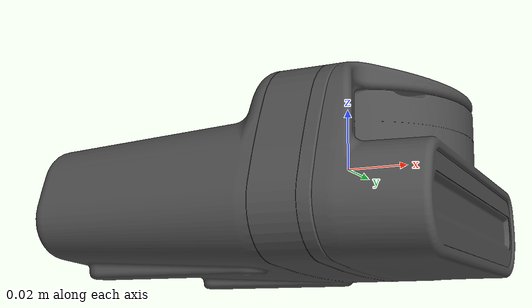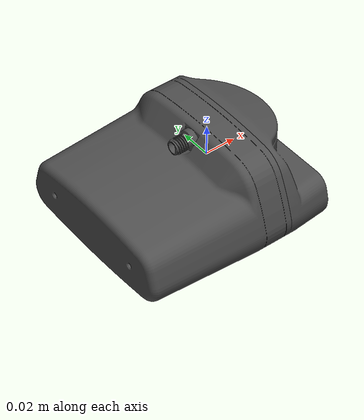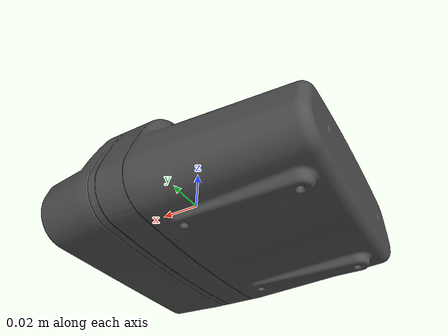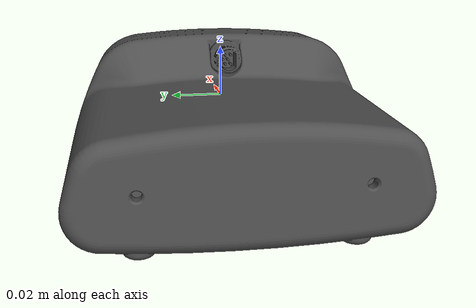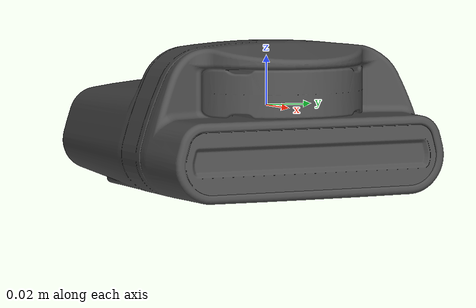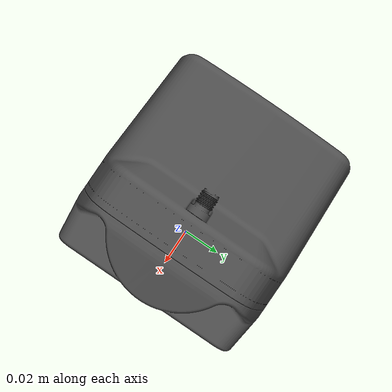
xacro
<?xml version="1.0" encoding="utf-8"?>
<robot name="oculus_sonar" xmlns:xacro="http://ros.org/wiki/xacro">

    <material name="gray">
        <color rgba="0.3 0.3 0.3 1"/>
    </material>

    <link name="world"></link>

    <link name="sonar_x"></link>
    <link name="sonar_y"></link>
    <link name="sonar_z"></link>
    <link name="sonar_roll"></link>
    <link name="sonar_pitch"></link>

    <joint name="world_x_sonar" type='prismatic'>
        <origin xyz="0 0 0" rpy="0 0 0"/>
        <parent link="world"/>
        <child link="sonar_x"/>
        <axis xyz="1 0 0"/>
        <limit lower="-5" upper="5" velocity="100" effort="100"/>
    </joint>

    <joint name="world_y_sonar" type='prismatic'>
        <origin xyz="0 0 0" rpy="0 0 0"/>
        <parent link="sonar_x"/>
        <child link="sonar_y"/>
        <axis xyz="0 1 0"/>
        <limit lower="-5" upper="5" velocity="100" effort="100"/>
    </joint>

    <joint name="world_z_sonar" type='prismatic'>
        <origin xyz="0 0 0" rpy="0 0 0"/>
        <parent link="sonar_y"/>
        <child link="sonar_z"/>
        <axis xyz="0 0 1"/>
        <limit lower="-5" upper="5" velocity="100" effort="100"/>
    </joint>

    <joint name="world_roll_sonar" type='revolute'>
        <origin xyz="0 0 0" rpy="0 0 0"/>
        <parent link="sonar_z"/>
        <child link="sonar_roll"/>
        <axis xyz="1 0 0"/>
        <limit lower="-${pi}" upper="${pi}" velocity="100" effort="100"/>
    </joint>

    <joint name="world_pitch_sonar" type='revolute'>
        <origin xyz="0 0 0" rpy="0 0 0"/>
        <parent link="sonar_roll"/>
        <child link="sonar_pitch"/>
        <axis xyz="0 1 0"/>
        <limit lower="-${pi}" upper="${pi}" velocity="100" effort="100"/>
    </joint>

    <joint name="world_yaw_sonar" type='revolute'>
        <origin xyz="0 0 0" rpy="0 0 0"/>
        <parent link="sonar_pitch"/>
        <child link="sonar"/>
        <axis xyz="0 0 1"/>
        <limit lower="-${pi}" upper="${pi}" velocity="100" effort="100"/>
    </joint>

    <link name="sonar">
      <visual>
        <origin
          xyz="0 0 0"
          rpy="0 0 1.57" />
        <geometry>
          <mesh
            filename="package://oculus_ros2/mesh/oculus_sonar.stl" scale="1.0 1.0 1.0"/>
        </geometry>
        <material name="gray"/>
      </visual>
    </link>
</robot>
